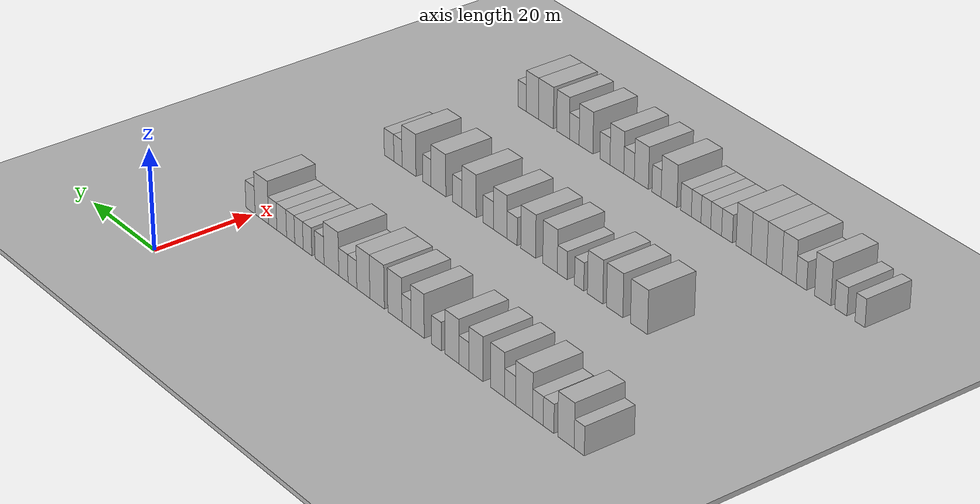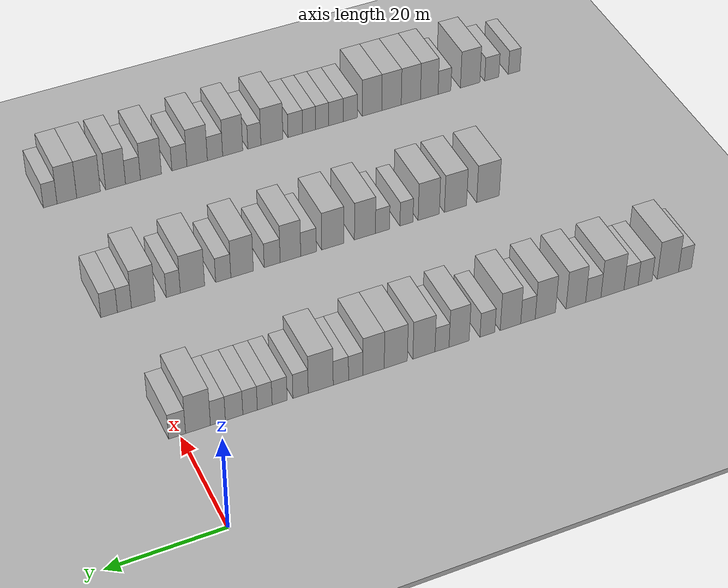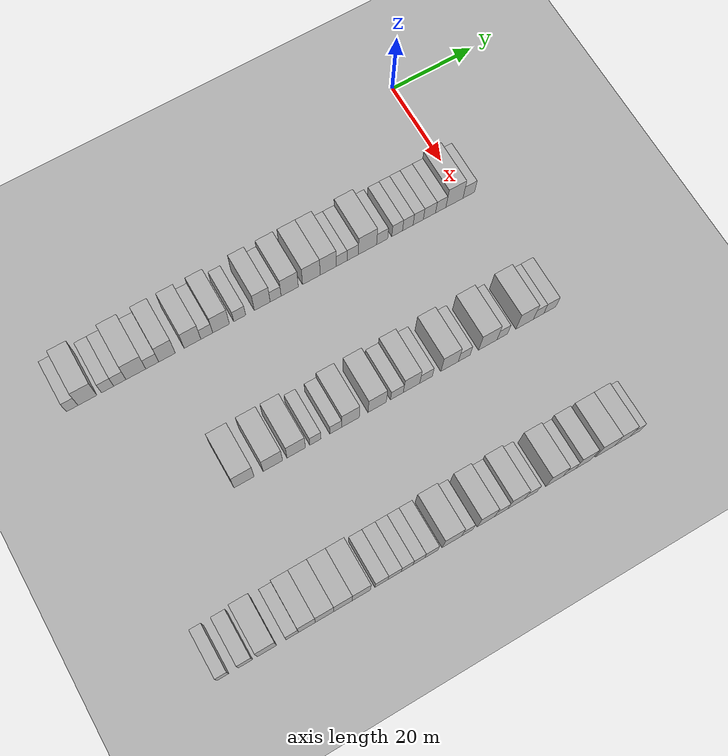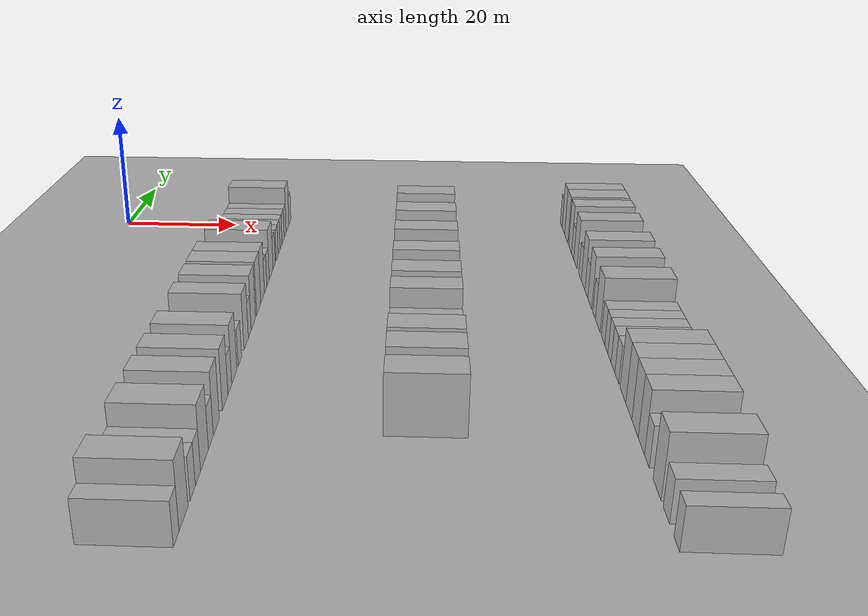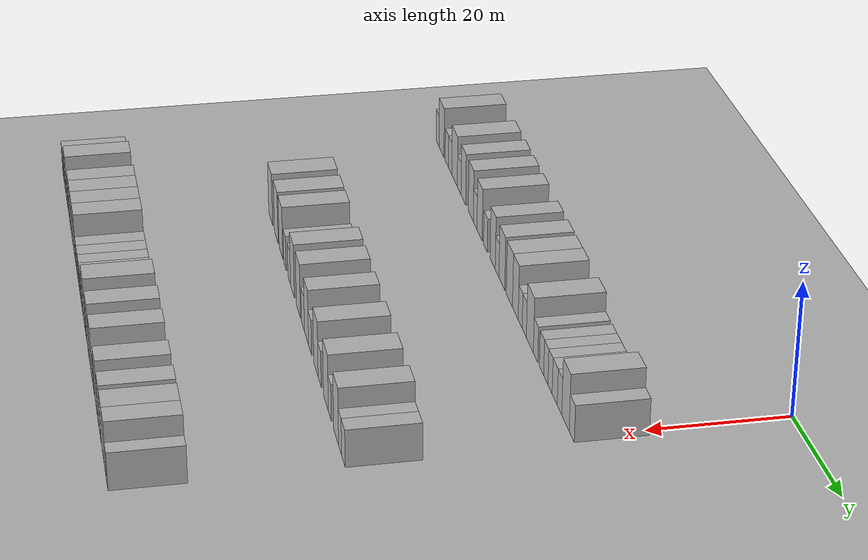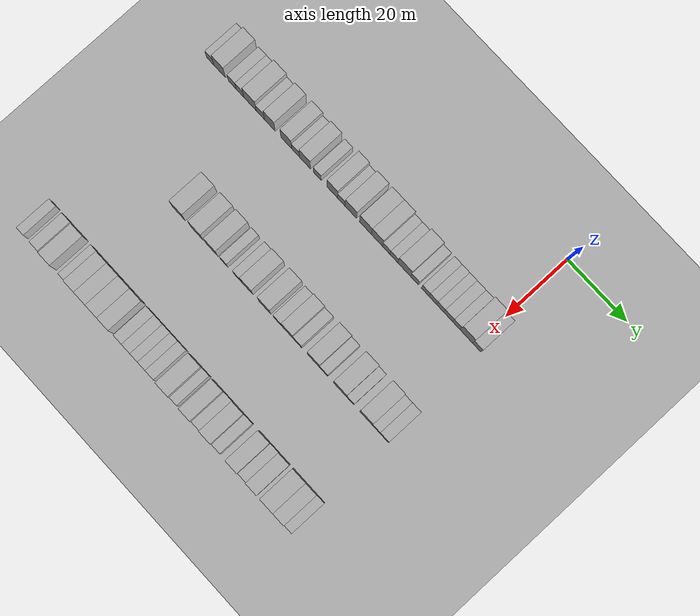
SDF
<sdf version="1.6">
 <world name="default">
  <include><name>ground_plane_1</name><uri>model://HANNAS_ground_plane</uri></include>
  <include>
   <name>ground_plane_2</name>
   <uri>model://HANNAS_ground_plane</uri>
   <pose>100 0 0  0 0 0</pose>
  </include>
  <model name="building_50">
   <static>1</static>
   <pose>25.0000 -91.9061 0 0.000000 0.000000 0.000000</pose>
   <link name="link">
    <pose>0 0 3.00 0 0 0</pose>
    <collision name="collision"><geometry><box><size>10.0000 2.5616 6.0000</size></box></geometry></collision>
    <visual name="visual">
     <cast_shadows>0</cast_shadows>
     <geometry><box><size>10.0000 2.5616 6.0000</size></box></geometry>
     <material>
      <script>
       <uri>model://HANNAS_wall/materials/scripts</uri>
       <uri>model://HANNAS_wall/materials/textures</uri>
       <name>vrc/HANNAS_wall</name>
      </script>
     </material>
    </visual>
   </link>
  </model>
  <model name="building_51">
   <static>1</static>
   <pose>25.0000 -88.5378 0 0.000000 0.000000 0.000000</pose>
   <link name="link">
    <pose>0 0 4.50 0 0 0</pose>
    <collision name="collision"><geometry><box><size>10.0000 4.1751 9.0000</size></box></geometry></collision>
    <visual name="visual">
     <cast_shadows>0</cast_shadows>
     <geometry><box><size>10.0000 4.1751 9.0000</size></box></geometry>
     <material>
      <script>
       <uri>model://HANNAS_wall/materials/scripts</uri>
       <uri>model://HANNAS_wall/materials/textures</uri>
       <name>vrc/HANNAS_wall</name>
      </script>
     </material>
    </visual>
   </link>
  </model>
  <model name="building_52">
   <static>1</static>
   <pose>25.0000 -84.0903 0 0.000000 0.000000 0.000000</pose>
   <link name="link">
    <pose>0 0 3.00 0 0 0</pose>
    <collision name="collision"><geometry><box><size>10.0000 2.7198 6.0000</size></box></geometry></collision>
    <visual name="visual">
     <cast_shadows>0</cast_shadows>
     <geometry><box><size>10.0000 2.7198 6.0000</size></box></geometry>
     <material>
      <script>
       <uri>model://HANNAS_wall/materials/scripts</uri>
       <uri>model://HANNAS_wall/materials/textures</uri>
       <name>vrc/HANNAS_wall</name>
      </script>
     </material>
    </visual>
   </link>
  </model>
  <model name="building_53">
   <static>1</static>
   <pose>25.0000 -81.3624 0 0.000000 0.000000 0.000000</pose>
   <link name="link">
    <pose>0 0 3.00 0 0 0</pose>
    <collision name="collision"><geometry><box><size>10.0000 2.7360 6.0000</size></box></geometry></collision>
    <visual name="visual">
     <cast_shadows>0</cast_shadows>
     <geometry><box><size>10.0000 2.7360 6.0000</size></box></geometry>
     <material>
      <script>
       <uri>model://HANNAS_wall/materials/scripts</uri>
       <uri>model://HANNAS_wall/materials/textures</uri>
       <name>vrc/HANNAS_wall</name>
      </script>
     </material>
    </visual>
   </link>
  </model>
  <model name="building_54">
   <static>1</static>
   <pose>25.0000 -77.7741 0 0.000000 0.000000 0.000000</pose>
   <link name="link">
    <pose>0 0 4.50 0 0 0</pose>
    <collision name="collision"><geometry><box><size>10.0000 4.4407 9.0000</size></box></geometry></collision>
    <visual name="visual">
     <cast_shadows>0</cast_shadows>
     <geometry><box><size>10.0000 4.4407 9.0000</size></box></geometry>
     <material>
      <script>
       <uri>model://HANNAS_wall/materials/scripts</uri>
       <uri>model://HANNAS_wall/materials/textures</uri>
       <name>vrc/HANNAS_wall</name>
      </script>
     </material>
    </visual>
   </link>
  </model>
  <model name="building_55">
   <static>1</static>
   <pose>25.0000 -74.0879 0 0.000000 0.000000 0.000000</pose>
   <link name="link">
    <pose>0 0 3.00 0 0 0</pose>
    <collision name="collision"><geometry><box><size>10.0000 2.9318 6.0000</size></box></geometry></collision>
    <visual name="visual">
     <cast_shadows>0</cast_shadows>
     <geometry><box><size>10.0000 2.9318 6.0000</size></box></geometry>
     <material>
      <script>
       <uri>model://HANNAS_wall/materials/scripts</uri>
       <uri>model://HANNAS_wall/materials/textures</uri>
       <name>vrc/HANNAS_wall</name>
      </script>
     </material>
    </visual>
   </link>
  </model>
  <model name="building_56">
   <static>1</static>
   <pose>25.0000 -70.7549 0 0.000000 0.000000 0.000000</pose>
   <link name="link">
    <pose>0 0 4.50 0 0 0</pose>
    <collision name="collision"><geometry><box><size>10.0000 3.7342 9.0000</size></box></geometry></collision>
    <visual name="visual">
     <cast_shadows>0</cast_shadows>
     <geometry><box><size>10.0000 3.7342 9.0000</size></box></geometry>
     <material>
      <script>
       <uri>model://HANNAS_wall/materials/scripts</uri>
       <uri>model://HANNAS_wall/materials/textures</uri>
       <name>vrc/HANNAS_wall</name>
      </script>
     </material>
    </visual>
   </link>
  </model>
  <model name="building_57">
   <static>1</static>
   <pose>25.0000 -64.9796 0 0.000000 0.000000 0.000000</pose>
   <link name="link">
    <pose>0 0 4.50 0 0 0</pose>
    <collision name="collision"><geometry><box><size>10.0000 3.8163 9.0000</size></box></geometry></collision>
    <visual name="visual">
     <cast_shadows>0</cast_shadows>
     <geometry><box><size>10.0000 3.8163 9.0000</size></box></geometry>
     <material>
      <script>
       <uri>model://HANNAS_wall/materials/scripts</uri>
       <uri>model://HANNAS_wall/materials/textures</uri>
       <name>vrc/HANNAS_wall</name>
      </script>
     </material>
    </visual>
   </link>
  </model>
  <model name="building_58">
   <static>1</static>
   <pose>25.0000 -61.7101 0 0.000000 0.000000 0.000000</pose>
   <link name="link">
    <pose>0 0 3.00 0 0 0</pose>
    <collision name="collision"><geometry><box><size>10.0000 2.7228 6.0000</size></box></geometry></collision>
    <visual name="visual">
     <cast_shadows>0</cast_shadows>
     <geometry><box><size>10.0000 2.7228 6.0000</size></box></geometry>
     <material>
      <script>
       <uri>model://HANNAS_wall/materials/scripts</uri>
       <uri>model://HANNAS_wall/materials/textures</uri>
       <name>vrc/HANNAS_wall</name>
      </script>
     </material>
    </visual>
   </link>
  </model>
  <model name="building_59">
   <static>1</static>
   <pose>25.0000 -58.4369 0 0.000000 0.000000 0.000000</pose>
   <link name="link">
    <pose>0 0 4.50 0 0 0</pose>
    <collision name="collision"><geometry><box><size>10.0000 3.8235 9.0000</size></box></geometry></collision>
    <visual name="visual">
     <cast_shadows>0</cast_shadows>
     <geometry><box><size>10.0000 3.8235 9.0000</size></box></geometry>
     <material>
      <script>
       <uri>model://HANNAS_wall/materials/scripts</uri>
       <uri>model://HANNAS_wall/materials/textures</uri>
       <name>vrc/HANNAS_wall</name>
      </script>
     </material>
    </visual>
   </link>
  </model>
  <model name="building_60">
   <static>1</static>
   <pose>25.0000 -54.1493 0 0.000000 0.000000 0.000000</pose>
   <link name="link">
    <pose>0 0 3.00 0 0 0</pose>
    <collision name="collision"><geometry><box><size>10.0000 2.7516 6.0000</size></box></geometry></collision>
    <visual name="visual">
     <cast_shadows>0</cast_shadows>
     <geometry><box><size>10.0000 2.7516 6.0000</size></box></geometry>
     <material>
      <script>
       <uri>model://HANNAS_wall/materials/scripts</uri>
       <uri>model://HANNAS_wall/materials/textures</uri>
       <name>vrc/HANNAS_wall</name>
      </script>
     </material>
    </visual>
   </link>
  </model>
  <model name="building_61">
   <static>1</static>
   <pose>25.0000 -48.9335 0 0.000000 0.000000 0.000000</pose>
   <link name="link">
    <pose>0 0 4.50 0 0 0</pose>
    <collision name="collision"><geometry><box><size>10.0000 3.6802 9.0000</size></box></geometry></collision>
    <visual name="visual">
     <cast_shadows>0</cast_shadows>
     <geometry><box><size>10.0000 3.6802 9.0000</size></box></geometry>
     <material>
      <script>
       <uri>model://HANNAS_wall/materials/scripts</uri>
       <uri>model://HANNAS_wall/materials/textures</uri>
       <name>vrc/HANNAS_wall</name>
      </script>
     </material>
    </visual>
   </link>
  </model>
  <model name="building_62">
   <static>1</static>
   <pose>25.0000 -45.8114 0 0.000000 0.000000 0.000000</pose>
   <link name="link">
    <pose>0 0 3.00 0 0 0</pose>
    <collision name="collision"><geometry><box><size>10.0000 2.5641 6.0000</size></box></geometry></collision>
    <visual name="visual">
     <cast_shadows>0</cast_shadows>
     <geometry><box><size>10.0000 2.5641 6.0000</size></box></geometry>
     <material>
      <script>
       <uri>model://HANNAS_wall/materials/scripts</uri>
       <uri>model://HANNAS_wall/materials/textures</uri>
       <name>vrc/HANNAS_wall</name>
      </script>
     </material>
    </visual>
   </link>
  </model>
  <model name="building_63">
   <static>1</static>
   <pose>25.0000 -42.5181 0 0.000000 0.000000 0.000000</pose>
   <link name="link">
    <pose>0 0 4.50 0 0 0</pose>
    <collision name="collision"><geometry><box><size>10.0000 4.0225 9.0000</size></box></geometry></collision>
    <visual name="visual">
     <cast_shadows>0</cast_shadows>
     <geometry><box><size>10.0000 4.0225 9.0000</size></box></geometry>
     <material>
      <script>
       <uri>model://HANNAS_wall/materials/scripts</uri>
       <uri>model://HANNAS_wall/materials/textures</uri>
       <name>vrc/HANNAS_wall</name>
      </script>
     </material>
    </visual>
   </link>
  </model>
  <model name="building_64">
   <static>1</static>
   <pose>25.0000 -37.4297 0 0.000000 0.000000 0.000000</pose>
   <link name="link">
    <pose>0 0 4.50 0 0 0</pose>
    <collision name="collision"><geometry><box><size>10.0000 4.1541 9.0000</size></box></geometry></collision>
    <visual name="visual">
     <cast_shadows>0</cast_shadows>
     <geometry><box><size>10.0000 4.1541 9.0000</size></box></geometry>
     <material>
      <script>
       <uri>model://HANNAS_wall/materials/scripts</uri>
       <uri>model://HANNAS_wall/materials/textures</uri>
       <name>vrc/HANNAS_wall</name>
      </script>
     </material>
    </visual>
   </link>
  </model>
  <model name="building_65">
   <static>1</static>
   <pose>25.0000 -33.4504 0 0.000000 0.000000 0.000000</pose>
   <link name="link">
    <pose>0 0 4.50 0 0 0</pose>
    <collision name="collision"><geometry><box><size>10.0000 3.8045 9.0000</size></box></geometry></collision>
    <visual name="visual">
     <cast_shadows>0</cast_shadows>
     <geometry><box><size>10.0000 3.8045 9.0000</size></box></geometry>
     <material>
      <script>
       <uri>model://HANNAS_wall/materials/scripts</uri>
       <uri>model://HANNAS_wall/materials/textures</uri>
       <name>vrc/HANNAS_wall</name>
      </script>
     </material>
    </visual>
   </link>
  </model>
  <model name="building_66">
   <static>1</static>
   <pose>25.0000 -30.2639 0 0.000000 0.000000 0.000000</pose>
   <link name="link">
    <pose>0 0 3.00 0 0 0</pose>
    <collision name="collision"><geometry><box><size>10.0000 2.5685 6.0000</size></box></geometry></collision>
    <visual name="visual">
     <cast_shadows>0</cast_shadows>
     <geometry><box><size>10.0000 2.5685 6.0000</size></box></geometry>
     <material>
      <script>
       <uri>model://HANNAS_wall/materials/scripts</uri>
       <uri>model://HANNAS_wall/materials/textures</uri>
       <name>vrc/HANNAS_wall</name>
      </script>
     </material>
    </visual>
   </link>
  </model>
  <model name="building_67">
   <static>1</static>
   <pose>25.0000 -27.6307 0 0.000000 0.000000 0.000000</pose>
   <link name="link">
    <pose>0 0 3.00 0 0 0</pose>
    <collision name="collision"><geometry><box><size>10.0000 2.6978 6.0000</size></box></geometry></collision>
    <visual name="visual">
     <cast_shadows>0</cast_shadows>
     <geometry><box><size>10.0000 2.6978 6.0000</size></box></geometry>
     <material>
      <script>
       <uri>model://HANNAS_wall/materials/scripts</uri>
       <uri>model://HANNAS_wall/materials/textures</uri>
       <name>vrc/HANNAS_wall</name>
      </script>
     </material>
    </visual>
   </link>
  </model>
  <model name="building_68">
   <static>1</static>
   <pose>25.0000 -24.0842 0 0.000000 0.000000 0.000000</pose>
   <link name="link">
    <pose>0 0 4.50 0 0 0</pose>
    <collision name="collision"><geometry><box><size>10.0000 4.3952 9.0000</size></box></geometry></collision>
    <visual name="visual">
     <cast_shadows>0</cast_shadows>
     <geometry><box><size>10.0000 4.3952 9.0000</size></box></geometry>
     <material>
      <script>
       <uri>model://HANNAS_wall/materials/scripts</uri>
       <uri>model://HANNAS_wall/materials/textures</uri>
       <name>vrc/HANNAS_wall</name>
      </script>
     </material>
    </visual>
   </link>
  </model>
  <model name="building_69">
   <static>1</static>
   <pose>25.0000 -20.5479 0 0.000000 0.000000 0.000000</pose>
   <link name="link">
    <pose>0 0 3.00 0 0 0</pose>
    <collision name="collision"><geometry><box><size>10.0000 2.6774 6.0000</size></box></geometry></collision>
    <visual name="visual">
     <cast_shadows>0</cast_shadows>
     <geometry><box><size>10.0000 2.6774 6.0000</size></box></geometry>
     <material>
      <script>
       <uri>model://HANNAS_wall/materials/scripts</uri>
       <uri>model://HANNAS_wall/materials/textures</uri>
       <name>vrc/HANNAS_wall</name>
      </script>
     </material>
    </visual>
   </link>
  </model>
  <model name="building_70">
   <static>1</static>
   <pose>25.0000 -16.9094 0 0.000000 0.000000 0.000000</pose>
   <link name="link">
    <pose>0 0 3.00 0 0 0</pose>
    <collision name="collision"><geometry><box><size>10.0000 2.5997 6.0000</size></box></geometry></collision>
    <visual name="visual">
     <cast_shadows>0</cast_shadows>
     <geometry><box><size>10.0000 2.5997 6.0000</size></box></geometry>
     <material>
      <script>
       <uri>model://HANNAS_wall/materials/scripts</uri>
       <uri>model://HANNAS_wall/materials/textures</uri>
       <name>vrc/HANNAS_wall</name>
      </script>
     </material>
    </visual>
   </link>
  </model>
  <model name="building_71">
   <static>1</static>
   <pose>25.0000 -14.3302 0 0.000000 0.000000 0.000000</pose>
   <link name="link">
    <pose>0 0 3.00 0 0 0</pose>
    <collision name="collision"><geometry><box><size>10.0000 2.5587 6.0000</size></box></geometry></collision>
    <visual name="visual">
     <cast_shadows>0</cast_shadows>
     <geometry><box><size>10.0000 2.5587 6.0000</size></box></geometry>
     <material>
      <script>
       <uri>model://HANNAS_wall/materials/scripts</uri>
       <uri>model://HANNAS_wall/materials/textures</uri>
       <name>vrc/HANNAS_wall</name>
      </script>
     </material>
    </visual>
   </link>
  </model>
  <model name="building_72">
   <static>1</static>
   <pose>25.0000 -11.8022 0 0.000000 0.000000 0.000000</pose>
   <link name="link">
    <pose>0 0 3.00 0 0 0</pose>
    <collision name="collision"><geometry><box><size>10.0000 2.4972 6.0000</size></box></geometry></collision>
    <visual name="visual">
     <cast_shadows>0</cast_shadows>
     <geometry><box><size>10.0000 2.4972 6.0000</size></box></geometry>
     <material>
      <script>
       <uri>model://HANNAS_wall/materials/scripts</uri>
       <uri>model://HANNAS_wall/materials/textures</uri>
       <name>vrc/HANNAS_wall</name>
      </script>
     </material>
    </visual>
   </link>
  </model>
  <model name="building_73">
   <static>1</static>
   <pose>25.0000 -9.0564 0 0.000000 0.000000 0.000000</pose>
   <link name="link">
    <pose>0 0 3.00 0 0 0</pose>
    <collision name="collision"><geometry><box><size>10.0000 2.9945 6.0000</size></box></geometry></collision>
    <visual name="visual">
     <cast_shadows>0</cast_shadows>
     <geometry><box><size>10.0000 2.9945 6.0000</size></box></geometry>
     <material>
      <script>
       <uri>model://HANNAS_wall/materials/scripts</uri>
       <uri>model://HANNAS_wall/materials/textures</uri>
       <name>vrc/HANNAS_wall</name>
      </script>
     </material>
    </visual>
   </link>
  </model>
  <model name="building_74">
   <static>1</static>
   <pose>25.0000 -6.2886 0 0.000000 0.000000 0.000000</pose>
   <link name="link">
    <pose>0 0 3.00 0 0 0</pose>
    <collision name="collision"><geometry><box><size>10.0000 2.5412 6.0000</size></box></geometry></collision>
    <visual name="visual">
     <cast_shadows>0</cast_shadows>
     <geometry><box><size>10.0000 2.5412 6.0000</size></box></geometry>
     <material>
      <script>
       <uri>model://HANNAS_wall/materials/scripts</uri>
       <uri>model://HANNAS_wall/materials/textures</uri>
       <name>vrc/HANNAS_wall</name>
      </script>
     </material>
    </visual>
   </link>
  </model>
  <model name="building_75">
   <static>1</static>
   <pose>25.0000 -2.9095 0 0.000000 0.000000 0.000000</pose>
   <link name="link">
    <pose>0 0 4.50 0 0 0</pose>
    <collision name="collision"><geometry><box><size>10.0000 4.2168 9.0000</size></box></geometry></collision>
    <visual name="visual">
     <cast_shadows>0</cast_shadows>
     <geometry><box><size>10.0000 4.2168 9.0000</size></box></geometry>
     <material>
      <script>
       <uri>model://HANNAS_wall/materials/scripts</uri>
       <uri>model://HANNAS_wall/materials/textures</uri>
       <name>vrc/HANNAS_wall</name>
      </script>
     </material>
    </visual>
   </link>
  </model>
  <model name="building_76">
   <static>1</static>
   <pose>25.0000 0.6265 0 0.000000 0.000000 0.000000</pose>
   <link name="link">
    <pose>0 0 3.00 0 0 0</pose>
    <collision name="collision"><geometry><box><size>10.0000 2.8553 6.0000</size></box></geometry></collision>
    <visual name="visual">
     <cast_shadows>0</cast_shadows>
     <geometry><box><size>10.0000 2.8553 6.0000</size></box></geometry>
     <material>
      <script>
       <uri>model://HANNAS_wall/materials/scripts</uri>
       <uri>model://HANNAS_wall/materials/textures</uri>
       <name>vrc/HANNAS_wall</name>
      </script>
     </material>
    </visual>
   </link>
  </model>
  <model name="building_189">
   <static>1</static>
   <pose>55.0000 -69.4664 0 0.000000 0.000000 0.000000</pose>
   <link name="link">
    <pose>0 0 4.50 0 0 0</pose>
    <collision name="collision"><geometry><box><size>10.0000 4.4636 9.0000</size></box></geometry></collision>
    <visual name="visual">
     <cast_shadows>0</cast_shadows>
     <geometry><box><size>10.0000 4.4636 9.0000</size></box></geometry>
     <material>
      <script>
       <uri>model://HANNAS_wall/materials/scripts</uri>
       <uri>model://HANNAS_wall/materials/textures</uri>
       <name>vrc/HANNAS_wall</name>
      </script>
     </material>
    </visual>
   </link>
  </model>
  <model name="building_190">
   <static>1</static>
   <pose>55.0000 -63.0698 0 0.000000 0.000000 0.000000</pose>
   <link name="link">
    <pose>0 0 4.50 0 0 0</pose>
    <collision name="collision"><geometry><box><size>10.0000 4.3295 9.0000</size></box></geometry></collision>
    <visual name="visual">
     <cast_shadows>0</cast_shadows>
     <geometry><box><size>10.0000 4.3295 9.0000</size></box></geometry>
     <material>
      <script>
       <uri>model://HANNAS_wall/materials/scripts</uri>
       <uri>model://HANNAS_wall/materials/textures</uri>
       <name>vrc/HANNAS_wall</name>
      </script>
     </material>
    </visual>
   </link>
  </model>
  <model name="building_191">
   <static>1</static>
   <pose>55.0000 -57.8477 0 0.000000 0.000000 0.000000</pose>
   <link name="link">
    <pose>0 0 4.50 0 0 0</pose>
    <collision name="collision"><geometry><box><size>10.0000 4.1146 9.0000</size></box></geometry></collision>
    <visual name="visual">
     <cast_shadows>0</cast_shadows>
     <geometry><box><size>10.0000 4.1146 9.0000</size></box></geometry>
     <material>
      <script>
       <uri>model://HANNAS_wall/materials/scripts</uri>
       <uri>model://HANNAS_wall/materials/textures</uri>
       <name>vrc/HANNAS_wall</name>
      </script>
     </material>
    </visual>
   </link>
  </model>
  <model name="building_192">
   <static>1</static>
   <pose>55.0000 -53.5341 0 0.000000 0.000000 0.000000</pose>
   <link name="link">
    <pose>0 0 3.00 0 0 0</pose>
    <collision name="collision"><geometry><box><size>10.0000 2.5127 6.0000</size></box></geometry></collision>
    <visual name="visual">
     <cast_shadows>0</cast_shadows>
     <geometry><box><size>10.0000 2.5127 6.0000</size></box></geometry>
     <material>
      <script>
       <uri>model://HANNAS_wall/materials/scripts</uri>
       <uri>model://HANNAS_wall/materials/textures</uri>
       <name>vrc/HANNAS_wall</name>
      </script>
     </material>
    </visual>
   </link>
  </model>
  <model name="building_193">
   <static>1</static>
   <pose>55.0000 -48.9296 0 0.000000 0.000000 0.000000</pose>
   <link name="link">
    <pose>0 0 3.00 0 0 0</pose>
    <collision name="collision"><geometry><box><size>10.0000 2.6963 6.0000</size></box></geometry></collision>
    <visual name="visual">
     <cast_shadows>0</cast_shadows>
     <geometry><box><size>10.0000 2.6963 6.0000</size></box></geometry>
     <material>
      <script>
       <uri>model://HANNAS_wall/materials/scripts</uri>
       <uri>model://HANNAS_wall/materials/textures</uri>
       <name>vrc/HANNAS_wall</name>
      </script>
     </material>
    </visual>
   </link>
  </model>
  <model name="building_194">
   <static>1</static>
   <pose>55.0000 -45.5758 0 0.000000 0.000000 0.000000</pose>
   <link name="link">
    <pose>0 0 4.50 0 0 0</pose>
    <collision name="collision"><geometry><box><size>10.0000 4.0113 9.0000</size></box></geometry></collision>
    <visual name="visual">
     <cast_shadows>0</cast_shadows>
     <geometry><box><size>10.0000 4.0113 9.0000</size></box></geometry>
     <material>
      <script>
       <uri>model://HANNAS_wall/materials/scripts</uri>
       <uri>model://HANNAS_wall/materials/textures</uri>
       <name>vrc/HANNAS_wall</name>
      </script>
     </material>
    </visual>
   </link>
  </model>
  <model name="building_195">
   <static>1</static>
   <pose>55.0000 -39.4791 0 0.000000 0.000000 0.000000</pose>
   <link name="link">
    <pose>0 0 4.50 0 0 0</pose>
    <collision name="collision"><geometry><box><size>10.0000 4.1820 9.0000</size></box></geometry></collision>
    <visual name="visual">
     <cast_shadows>0</cast_shadows>
     <geometry><box><size>10.0000 4.1820 9.0000</size></box></geometry>
     <material>
      <script>
       <uri>model://HANNAS_wall/materials/scripts</uri>
       <uri>model://HANNAS_wall/materials/textures</uri>
       <name>vrc/HANNAS_wall</name>
      </script>
     </material>
    </visual>
   </link>
  </model>
  <model name="building_196">
   <static>1</static>
   <pose>55.0000 -34.9200 0 0.000000 0.000000 0.000000</pose>
   <link name="link">
    <pose>0 0 3.00 0 0 0</pose>
    <collision name="collision"><geometry><box><size>10.0000 2.9363 6.0000</size></box></geometry></collision>
    <visual name="visual">
     <cast_shadows>0</cast_shadows>
     <geometry><box><size>10.0000 2.9363 6.0000</size></box></geometry>
     <material>
      <script>
       <uri>model://HANNAS_wall/materials/scripts</uri>
       <uri>model://HANNAS_wall/materials/textures</uri>
       <name>vrc/HANNAS_wall</name>
      </script>
     </material>
    </visual>
   </link>
  </model>
  <model name="building_197">
   <static>1</static>
   <pose>55.0000 -31.5383 0 0.000000 0.000000 0.000000</pose>
   <link name="link">
    <pose>0 0 4.50 0 0 0</pose>
    <collision name="collision"><geometry><box><size>10.0000 3.8271 9.0000</size></box></geometry></collision>
    <visual name="visual">
     <cast_shadows>0</cast_shadows>
     <geometry><box><size>10.0000 3.8271 9.0000</size></box></geometry>
     <material>
      <script>
       <uri>model://HANNAS_wall/materials/scripts</uri>
       <uri>model://HANNAS_wall/materials/textures</uri>
       <name>vrc/HANNAS_wall</name>
      </script>
     </material>
    </visual>
   </link>
  </model>
  <model name="building_198">
   <static>1</static>
   <pose>55.0000 -28.1453 0 0.000000 0.000000 0.000000</pose>
   <link name="link">
    <pose>0 0 3.00 0 0 0</pose>
    <collision name="collision"><geometry><box><size>10.0000 2.9590 6.0000</size></box></geometry></collision>
    <visual name="visual">
     <cast_shadows>0</cast_shadows>
     <geometry><box><size>10.0000 2.9590 6.0000</size></box></geometry>
     <material>
      <script>
       <uri>model://HANNAS_wall/materials/scripts</uri>
       <uri>model://HANNAS_wall/materials/textures</uri>
       <name>vrc/HANNAS_wall</name>
      </script>
     </material>
    </visual>
   </link>
  </model>
  <model name="building_199">
   <static>1</static>
   <pose>55.0000 -22.5994 0 0.000000 0.000000 0.000000</pose>
   <link name="link">
    <pose>0 0 4.50 0 0 0</pose>
    <collision name="collision"><geometry><box><size>10.0000 4.1326 9.0000</size></box></geometry></collision>
    <visual name="visual">
     <cast_shadows>0</cast_shadows>
     <geometry><box><size>10.0000 4.1326 9.0000</size></box></geometry>
     <material>
      <script>
       <uri>model://HANNAS_wall/materials/scripts</uri>
       <uri>model://HANNAS_wall/materials/textures</uri>
       <name>vrc/HANNAS_wall</name>
      </script>
     </material>
    </visual>
   </link>
  </model>
  <model name="building_200">
   <static>1</static>
   <pose>55.0000 -19.1461 0 0.000000 0.000000 0.000000</pose>
   <link name="link">
    <pose>0 0 3.00 0 0 0</pose>
    <collision name="collision"><geometry><box><size>10.0000 2.7740 6.0000</size></box></geometry></collision>
    <visual name="visual">
     <cast_shadows>0</cast_shadows>
     <geometry><box><size>10.0000 2.7740 6.0000</size></box></geometry>
     <material>
      <script>
       <uri>model://HANNAS_wall/materials/scripts</uri>
       <uri>model://HANNAS_wall/materials/textures</uri>
       <name>vrc/HANNAS_wall</name>
      </script>
     </material>
    </visual>
   </link>
  </model>
  <model name="building_201">
   <static>1</static>
   <pose>55.0000 -13.5597 0 0.000000 0.000000 0.000000</pose>
   <link name="link">
    <pose>0 0 4.50 0 0 0</pose>
    <collision name="collision"><geometry><box><size>10.0000 4.3989 9.0000</size></box></geometry></collision>
    <visual name="visual">
     <cast_shadows>0</cast_shadows>
     <geometry><box><size>10.0000 4.3989 9.0000</size></box></geometry>
     <material>
      <script>
       <uri>model://HANNAS_wall/materials/scripts</uri>
       <uri>model://HANNAS_wall/materials/textures</uri>
       <name>vrc/HANNAS_wall</name>
      </script>
     </material>
    </visual>
   </link>
  </model>
  <model name="building_202">
   <static>1</static>
   <pose>55.0000 -10.0981 0 0.000000 0.000000 0.000000</pose>
   <link name="link">
    <pose>0 0 3.00 0 0 0</pose>
    <collision name="collision"><geometry><box><size>10.0000 2.5242 6.0000</size></box></geometry></collision>
    <visual name="visual">
     <cast_shadows>0</cast_shadows>
     <geometry><box><size>10.0000 2.5242 6.0000</size></box></geometry>
     <material>
      <script>
       <uri>model://HANNAS_wall/materials/scripts</uri>
       <uri>model://HANNAS_wall/materials/textures</uri>
       <name>vrc/HANNAS_wall</name>
      </script>
     </material>
    </visual>
   </link>
  </model>
  <model name="building_203">
   <static>1</static>
   <pose>55.0000 -4.7253 0 0.000000 0.000000 0.000000</pose>
   <link name="link">
    <pose>0 0 4.50 0 0 0</pose>
    <collision name="collision"><geometry><box><size>10.0000 4.2214 9.0000</size></box></geometry></collision>
    <visual name="visual">
     <cast_shadows>0</cast_shadows>
     <geometry><box><size>10.0000 4.2214 9.0000</size></box></geometry>
     <material>
      <script>
       <uri>model://HANNAS_wall/materials/scripts</uri>
       <uri>model://HANNAS_wall/materials/textures</uri>
       <name>vrc/HANNAS_wall</name>
      </script>
     </material>
    </visual>
   </link>
  </model>
  <model name="building_204">
   <static>1</static>
   <pose>55.0000 -1.3671 0 0.000000 0.000000 0.000000</pose>
   <link name="link">
    <pose>0 0 3.00 0 0 0</pose>
    <collision name="collision"><geometry><box><size>10.0000 2.4949 6.0000</size></box></geometry></collision>
    <visual name="visual">
     <cast_shadows>0</cast_shadows>
     <geometry><box><size>10.0000 2.4949 6.0000</size></box></geometry>
     <material>
      <script>
       <uri>model://HANNAS_wall/materials/scripts</uri>
       <uri>model://HANNAS_wall/materials/textures</uri>
       <name>vrc/HANNAS_wall</name>
      </script>
     </material>
    </visual>
   </link>
  </model>
  <model name="building_205">
   <static>1</static>
   <pose>55.0000 1.3415 0 0.000000 0.000000 0.000000</pose>
   <link name="link">
    <pose>0 0 3.00 0 0 0</pose>
    <collision name="collision"><geometry><box><size>10.0000 2.9223 6.0000</size></box></geometry></collision>
    <visual name="visual">
     <cast_shadows>0</cast_shadows>
     <geometry><box><size>10.0000 2.9223 6.0000</size></box></geometry>
     <material>
      <script>
       <uri>model://HANNAS_wall/materials/scripts</uri>
       <uri>model://HANNAS_wall/materials/textures</uri>
       <name>vrc/HANNAS_wall</name>
      </script>
     </material>
    </visual>
   </link>
  </model>
  <model name="building_324">
   <static>1</static>
   <pose>85.0000 -90.1951 0 0.000000 0.000000 0.000000</pose>
   <link name="link">
    <pose>0 0 3.00 0 0 0</pose>
    <collision name="collision"><geometry><box><size>10.0000 2.4490 6.0000</size></box></geometry></collision>
    <visual name="visual">
     <cast_shadows>0</cast_shadows>
     <geometry><box><size>10.0000 2.4490 6.0000</size></box></geometry>
     <material>
      <script>
       <uri>model://HANNAS_wall/materials/scripts</uri>
       <uri>model://HANNAS_wall/materials/textures</uri>
       <name>vrc/HANNAS_wall</name>
      </script>
     </material>
    </visual>
   </link>
  </model>
  <model name="building_325">
   <static>1</static>
   <pose>85.0000 -85.4743 0 0.000000 0.000000 0.000000</pose>
   <link name="link">
    <pose>0 0 3.00 0 0 0</pose>
    <collision name="collision"><geometry><box><size>10.0000 2.9927 6.0000</size></box></geometry></collision>
    <visual name="visual">
     <cast_shadows>0</cast_shadows>
     <geometry><box><size>10.0000 2.9927 6.0000</size></box></geometry>
     <material>
      <script>
       <uri>model://HANNAS_wall/materials/scripts</uri>
       <uri>model://HANNAS_wall/materials/textures</uri>
       <name>vrc/HANNAS_wall</name>
      </script>
     </material>
    </visual>
   </link>
  </model>
  <model name="building_326">
   <static>1</static>
   <pose>85.0000 -80.9362 0 0.000000 0.000000 0.000000</pose>
   <link name="link">
    <pose>0 0 4.50 0 0 0</pose>
    <collision name="collision"><geometry><box><size>10.0000 4.0835 9.0000</size></box></geometry></collision>
    <visual name="visual">
     <cast_shadows>0</cast_shadows>
     <geometry><box><size>10.0000 4.0835 9.0000</size></box></geometry>
     <material>
      <script>
       <uri>model://HANNAS_wall/materials/scripts</uri>
       <uri>model://HANNAS_wall/materials/textures</uri>
       <name>vrc/HANNAS_wall</name>
      </script>
     </material>
    </visual>
   </link>
  </model>
  <model name="building_327">
   <static>1</static>
   <pose>85.0000 -75.5664 0 0.000000 0.000000 0.000000</pose>
   <link name="link">
    <pose>0 0 3.00 0 0 0</pose>
    <collision name="collision"><geometry><box><size>10.0000 2.6561 6.0000</size></box></geometry></collision>
    <visual name="visual">
     <cast_shadows>0</cast_shadows>
     <geometry><box><size>10.0000 2.6561 6.0000</size></box></geometry>
     <material>
      <script>
       <uri>model://HANNAS_wall/materials/scripts</uri>
       <uri>model://HANNAS_wall/materials/textures</uri>
       <name>vrc/HANNAS_wall</name>
      </script>
     </material>
    </visual>
   </link>
  </model>
  <model name="building_328">
   <static>1</static>
   <pose>85.0000 -72.4130 0 0.000000 0.000000 0.000000</pose>
   <link name="link">
    <pose>0 0 4.50 0 0 0</pose>
    <collision name="collision"><geometry><box><size>10.0000 3.6506 9.0000</size></box></geometry></collision>
    <visual name="visual">
     <cast_shadows>0</cast_shadows>
     <geometry><box><size>10.0000 3.6506 9.0000</size></box></geometry>
     <material>
      <script>
       <uri>model://HANNAS_wall/materials/scripts</uri>
       <uri>model://HANNAS_wall/materials/textures</uri>
       <name>vrc/HANNAS_wall</name>
      </script>
     </material>
    </visual>
   </link>
  </model>
  <model name="building_329">
   <static>1</static>
   <pose>85.0000 -68.6105 0 0.000000 0.000000 0.000000</pose>
   <link name="link">
    <pose>0 0 4.50 0 0 0</pose>
    <collision name="collision"><geometry><box><size>10.0000 3.9544 9.0000</size></box></geometry></collision>
    <visual name="visual">
     <cast_shadows>0</cast_shadows>
     <geometry><box><size>10.0000 3.9544 9.0000</size></box></geometry>
     <material>
      <script>
       <uri>model://HANNAS_wall/materials/scripts</uri>
       <uri>model://HANNAS_wall/materials/textures</uri>
       <name>vrc/HANNAS_wall</name>
      </script>
     </material>
    </visual>
   </link>
  </model>
  <model name="building_330">
   <static>1</static>
   <pose>85.0000 -64.6403 0 0.000000 0.000000 0.000000</pose>
   <link name="link">
    <pose>0 0 4.50 0 0 0</pose>
    <collision name="collision"><geometry><box><size>10.0000 3.9861 9.0000</size></box></geometry></collision>
    <visual name="visual">
     <cast_shadows>0</cast_shadows>
     <geometry><box><size>10.0000 3.9861 9.0000</size></box></geometry>
     <material>
      <script>
       <uri>model://HANNAS_wall/materials/scripts</uri>
       <uri>model://HANNAS_wall/materials/textures</uri>
       <name>vrc/HANNAS_wall</name>
      </script>
     </material>
    </visual>
   </link>
  </model>
  <model name="building_331">
   <static>1</static>
   <pose>85.0000 -60.6654 0 0.000000 0.000000 0.000000</pose>
   <link name="link">
    <pose>0 0 4.50 0 0 0</pose>
    <collision name="collision"><geometry><box><size>10.0000 3.9637 9.0000</size></box></geometry></collision>
    <visual name="visual">
     <cast_shadows>0</cast_shadows>
     <geometry><box><size>10.0000 3.9637 9.0000</size></box></geometry>
     <material>
      <script>
       <uri>model://HANNAS_wall/materials/scripts</uri>
       <uri>model://HANNAS_wall/materials/textures</uri>
       <name>vrc/HANNAS_wall</name>
      </script>
     </material>
    </visual>
   </link>
  </model>
  <model name="building_332">
   <static>1</static>
   <pose>85.0000 -56.2513 0 0.000000 0.000000 0.000000</pose>
   <link name="link">
    <pose>0 0 3.00 0 0 0</pose>
    <collision name="collision"><geometry><box><size>10.0000 2.8647 6.0000</size></box></geometry></collision>
    <visual name="visual">
     <cast_shadows>0</cast_shadows>
     <geometry><box><size>10.0000 2.8647 6.0000</size></box></geometry>
     <material>
      <script>
       <uri>model://HANNAS_wall/materials/scripts</uri>
       <uri>model://HANNAS_wall/materials/textures</uri>
       <name>vrc/HANNAS_wall</name>
      </script>
     </material>
    </visual>
   </link>
  </model>
  <model name="building_333">
   <static>1</static>
   <pose>85.0000 -53.3668 0 0.000000 0.000000 0.000000</pose>
   <link name="link">
    <pose>0 0 3.00 0 0 0</pose>
    <collision name="collision"><geometry><box><size>10.0000 2.9043 6.0000</size></box></geometry></collision>
    <visual name="visual">
     <cast_shadows>0</cast_shadows>
     <geometry><box><size>10.0000 2.9043 6.0000</size></box></geometry>
     <material>
      <script>
       <uri>model://HANNAS_wall/materials/scripts</uri>
       <uri>model://HANNAS_wall/materials/textures</uri>
       <name>vrc/HANNAS_wall</name>
      </script>
     </material>
    </visual>
   </link>
  </model>
  <model name="building_334">
   <static>1</static>
   <pose>85.0000 -50.6099 0 0.000000 0.000000 0.000000</pose>
   <link name="link">
    <pose>0 0 3.00 0 0 0</pose>
    <collision name="collision"><geometry><box><size>10.0000 2.6096 6.0000</size></box></geometry></collision>
    <visual name="visual">
     <cast_shadows>0</cast_shadows>
     <geometry><box><size>10.0000 2.6096 6.0000</size></box></geometry>
     <material>
      <script>
       <uri>model://HANNAS_wall/materials/scripts</uri>
       <uri>model://HANNAS_wall/materials/textures</uri>
       <name>vrc/HANNAS_wall</name>
      </script>
     </material>
    </visual>
   </link>
  </model>
  <model name="building_335">
   <static>1</static>
   <pose>85.0000 -48.0006 0 0.000000 0.000000 0.000000</pose>
   <link name="link">
    <pose>0 0 3.00 0 0 0</pose>
    <collision name="collision"><geometry><box><size>10.0000 2.6090 6.0000</size></box></geometry></collision>
    <visual name="visual">
     <cast_shadows>0</cast_shadows>
     <geometry><box><size>10.0000 2.6090 6.0000</size></box></geometry>
     <material>
      <script>
       <uri>model://HANNAS_wall/materials/scripts</uri>
       <uri>model://HANNAS_wall/materials/textures</uri>
       <name>vrc/HANNAS_wall</name>
      </script>
     </material>
    </visual>
   </link>
  </model>
  <model name="building_336">
   <static>1</static>
   <pose>85.0000 -45.2424 0 0.000000 0.000000 0.000000</pose>
   <link name="link">
    <pose>0 0 3.00 0 0 0</pose>
    <collision name="collision"><geometry><box><size>10.0000 2.9072 6.0000</size></box></geometry></collision>
    <visual name="visual">
     <cast_shadows>0</cast_shadows>
     <geometry><box><size>10.0000 2.9072 6.0000</size></box></geometry>
     <material>
      <script>
       <uri>model://HANNAS_wall/materials/scripts</uri>
       <uri>model://HANNAS_wall/materials/textures</uri>
       <name>vrc/HANNAS_wall</name>
      </script>
     </material>
    </visual>
   </link>
  </model>
  <model name="building_337">
   <static>1</static>
   <pose>85.0000 -40.6162 0 0.000000 0.000000 0.000000</pose>
   <link name="link">
    <pose>0 0 4.50 0 0 0</pose>
    <collision name="collision"><geometry><box><size>10.0000 4.3453 9.0000</size></box></geometry></collision>
    <visual name="visual">
     <cast_shadows>0</cast_shadows>
     <geometry><box><size>10.0000 4.3453 9.0000</size></box></geometry>
     <material>
      <script>
       <uri>model://HANNAS_wall/materials/scripts</uri>
       <uri>model://HANNAS_wall/materials/textures</uri>
       <name>vrc/HANNAS_wall</name>
      </script>
     </material>
    </visual>
   </link>
  </model>
  <model name="building_338">
   <static>1</static>
   <pose>85.0000 -37.1646 0 0.000000 0.000000 0.000000</pose>
   <link name="link">
    <pose>0 0 3.00 0 0 0</pose>
    <collision name="collision"><geometry><box><size>10.0000 2.5579 6.0000</size></box></geometry></collision>
    <visual name="visual">
     <cast_shadows>0</cast_shadows>
     <geometry><box><size>10.0000 2.5579 6.0000</size></box></geometry>
     <material>
      <script>
       <uri>model://HANNAS_wall/materials/scripts</uri>
       <uri>model://HANNAS_wall/materials/textures</uri>
       <name>vrc/HANNAS_wall</name>
      </script>
     </material>
    </visual>
   </link>
  </model>
  <model name="building_339">
   <static>1</static>
   <pose>85.0000 -32.9296 0 0.000000 0.000000 0.000000</pose>
   <link name="link">
    <pose>0 0 4.50 0 0 0</pose>
    <collision name="collision"><geometry><box><size>10.0000 3.9120 9.0000</size></box></geometry></collision>
    <visual name="visual">
     <cast_shadows>0</cast_shadows>
     <geometry><box><size>10.0000 3.9120 9.0000</size></box></geometry>
     <material>
      <script>
       <uri>model://HANNAS_wall/materials/scripts</uri>
       <uri>model://HANNAS_wall/materials/textures</uri>
       <name>vrc/HANNAS_wall</name>
      </script>
     </material>
    </visual>
   </link>
  </model>
  <model name="building_340">
   <static>1</static>
   <pose>85.0000 -29.4912 0 0.000000 0.000000 0.000000</pose>
   <link name="link">
    <pose>0 0 3.00 0 0 0</pose>
    <collision name="collision"><geometry><box><size>10.0000 2.9648 6.0000</size></box></geometry></collision>
    <visual name="visual">
     <cast_shadows>0</cast_shadows>
     <geometry><box><size>10.0000 2.9648 6.0000</size></box></geometry>
     <material>
      <script>
       <uri>model://HANNAS_wall/materials/scripts</uri>
       <uri>model://HANNAS_wall/materials/textures</uri>
       <name>vrc/HANNAS_wall</name>
      </script>
     </material>
    </visual>
   </link>
  </model>
  <model name="building_341">
   <static>1</static>
   <pose>85.0000 -26.0375 0 0.000000 0.000000 0.000000</pose>
   <link name="link">
    <pose>0 0 4.50 0 0 0</pose>
    <collision name="collision"><geometry><box><size>10.0000 3.9427 9.0000</size></box></geometry></collision>
    <visual name="visual">
     <cast_shadows>0</cast_shadows>
     <geometry><box><size>10.0000 3.9427 9.0000</size></box></geometry>
     <material>
      <script>
       <uri>model://HANNAS_wall/materials/scripts</uri>
       <uri>model://HANNAS_wall/materials/textures</uri>
       <name>vrc/HANNAS_wall</name>
      </script>
     </material>
    </visual>
   </link>
  </model>
  <model name="building_342">
   <static>1</static>
   <pose>85.0000 -22.6258 0 0.000000 0.000000 0.000000</pose>
   <link name="link">
    <pose>0 0 3.00 0 0 0</pose>
    <collision name="collision"><geometry><box><size>10.0000 2.8807 6.0000</size></box></geometry></collision>
    <visual name="visual">
     <cast_shadows>0</cast_shadows>
     <geometry><box><size>10.0000 2.8807 6.0000</size></box></geometry>
     <material>
      <script>
       <uri>model://HANNAS_wall/materials/scripts</uri>
       <uri>model://HANNAS_wall/materials/textures</uri>
       <name>vrc/HANNAS_wall</name>
      </script>
     </material>
    </visual>
   </link>
  </model>
  <model name="building_343">
   <static>1</static>
   <pose>85.0000 -17.1906 0 0.000000 0.000000 0.000000</pose>
   <link name="link">
    <pose>0 0 4.50 0 0 0</pose>
    <collision name="collision"><geometry><box><size>10.0000 3.9898 9.0000</size></box></geometry></collision>
    <visual name="visual">
     <cast_shadows>0</cast_shadows>
     <geometry><box><size>10.0000 3.9898 9.0000</size></box></geometry>
     <material>
      <script>
       <uri>model://HANNAS_wall/materials/scripts</uri>
       <uri>model://HANNAS_wall/materials/textures</uri>
       <name>vrc/HANNAS_wall</name>
      </script>
     </material>
    </visual>
   </link>
  </model>
  <model name="building_344">
   <static>1</static>
   <pose>85.0000 -13.7812 0 0.000000 0.000000 0.000000</pose>
   <link name="link">
    <pose>0 0 3.00 0 0 0</pose>
    <collision name="collision"><geometry><box><size>10.0000 2.8290 6.0000</size></box></geometry></collision>
    <visual name="visual">
     <cast_shadows>0</cast_shadows>
     <geometry><box><size>10.0000 2.8290 6.0000</size></box></geometry>
     <material>
      <script>
       <uri>model://HANNAS_wall/materials/scripts</uri>
       <uri>model://HANNAS_wall/materials/textures</uri>
       <name>vrc/HANNAS_wall</name>
      </script>
     </material>
    </visual>
   </link>
  </model>
  <model name="building_345">
   <static>1</static>
   <pose>85.0000 -10.5013 0 0.000000 0.000000 0.000000</pose>
   <link name="link">
    <pose>0 0 4.50 0 0 0</pose>
    <collision name="collision"><geometry><box><size>10.0000 3.7308 9.0000</size></box></geometry></collision>
    <visual name="visual">
     <cast_shadows>0</cast_shadows>
     <geometry><box><size>10.0000 3.7308 9.0000</size></box></geometry>
     <material>
      <script>
       <uri>model://HANNAS_wall/materials/scripts</uri>
       <uri>model://HANNAS_wall/materials/textures</uri>
       <name>vrc/HANNAS_wall</name>
      </script>
     </material>
    </visual>
   </link>
  </model>
  <model name="building_346">
   <static>1</static>
   <pose>85.0000 -5.4296 0 0.000000 0.000000 0.000000</pose>
   <link name="link">
    <pose>0 0 4.50 0 0 0</pose>
    <collision name="collision"><geometry><box><size>10.0000 4.4125 9.0000</size></box></geometry></collision>
    <visual name="visual">
     <cast_shadows>0</cast_shadows>
     <geometry><box><size>10.0000 4.4125 9.0000</size></box></geometry>
     <material>
      <script>
       <uri>model://HANNAS_wall/materials/scripts</uri>
       <uri>model://HANNAS_wall/materials/textures</uri>
       <name>vrc/HANNAS_wall</name>
      </script>
     </material>
    </visual>
   </link>
  </model>
  <model name="building_347">
   <static>1</static>
   <pose>85.0000 -1.3986 0 0.000000 0.000000 0.000000</pose>
   <link name="link">
    <pose>0 0 4.50 0 0 0</pose>
    <collision name="collision"><geometry><box><size>10.0000 3.6494 9.0000</size></box></geometry></collision>
    <visual name="visual">
     <cast_shadows>0</cast_shadows>
     <geometry><box><size>10.0000 3.6494 9.0000</size></box></geometry>
     <material>
      <script>
       <uri>model://HANNAS_wall/materials/scripts</uri>
       <uri>model://HANNAS_wall/materials/textures</uri>
       <name>vrc/HANNAS_wall</name>
      </script>
     </material>
    </visual>
   </link>
  </model>
  <model name="building_348">
   <static>1</static>
   <pose>85.0000 1.6920 0 0.000000 0.000000 0.000000</pose>
   <link name="link">
    <pose>0 0 3.00 0 0 0</pose>
    <collision name="collision"><geometry><box><size>10.0000 2.5319 6.0000</size></box></geometry></collision>
    <visual name="visual">
     <cast_shadows>0</cast_shadows>
     <geometry><box><size>10.0000 2.5319 6.0000</size></box></geometry>
     <material>
      <script>
       <uri>model://HANNAS_wall/materials/scripts</uri>
       <uri>model://HANNAS_wall/materials/textures</uri>
       <name>vrc/HANNAS_wall</name>
      </script>
     </material>
    </visual>
   </link>
  </model>
 </world>
</sdf>
